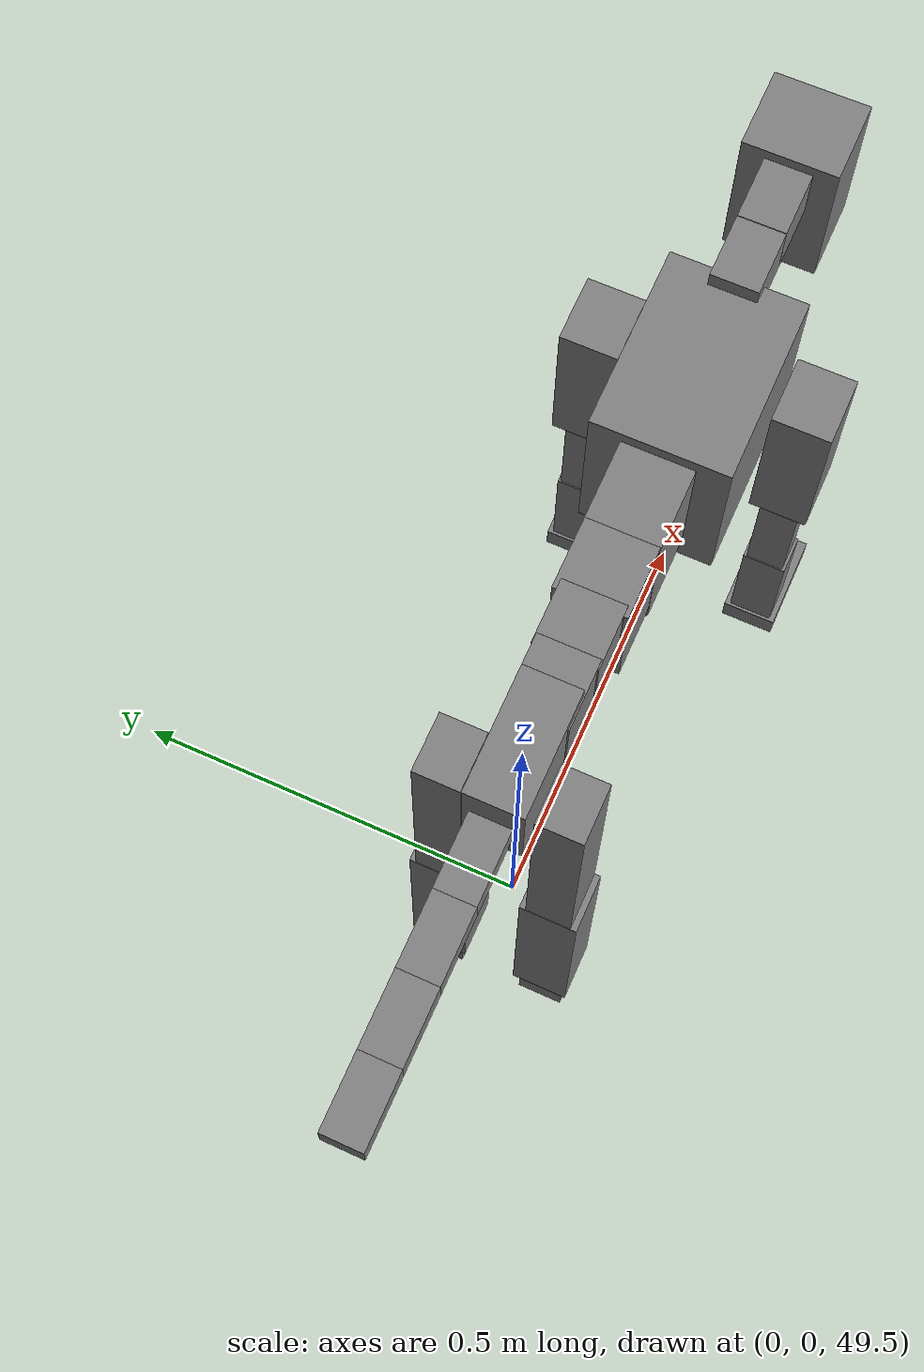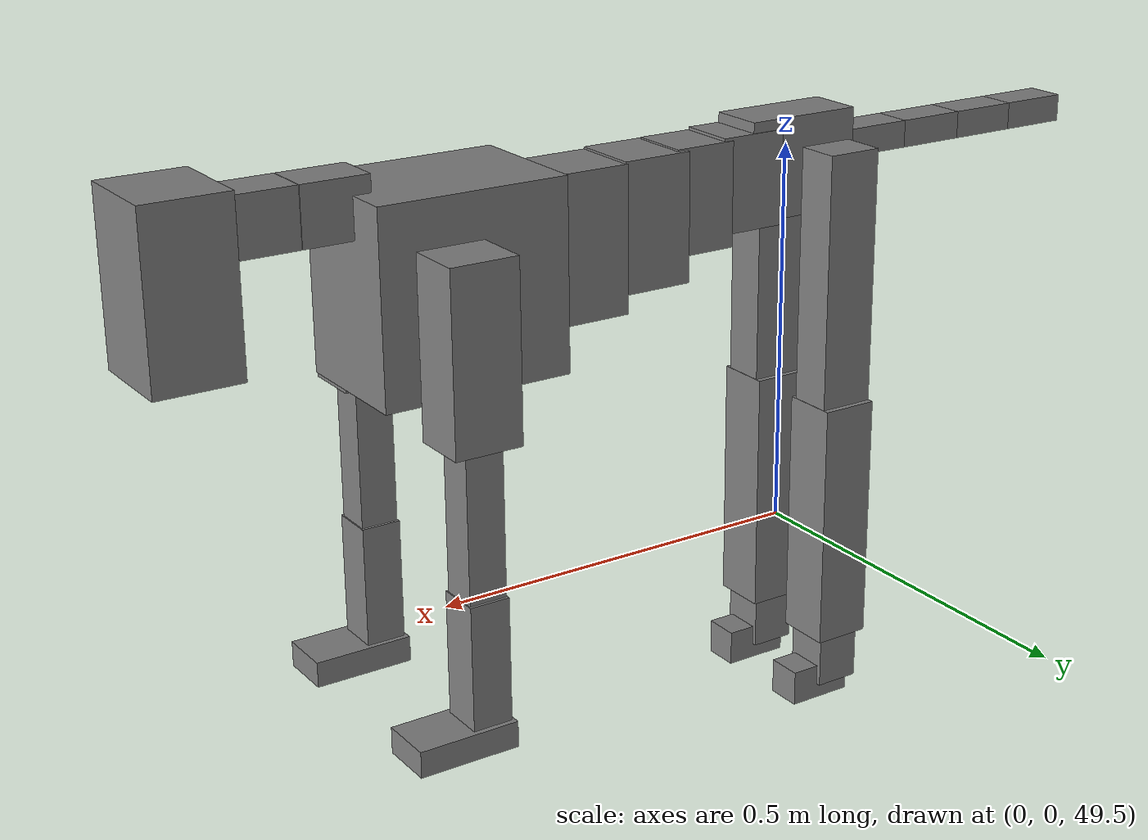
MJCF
<mujoco model="dog">

    <default>
        <joint armature="0.02" stiffness="1" damping="0.2" limited="true"/>
        <geom condim="3" friction="1 0.05 0.05" margin="0.01"/>
        <motor ctrllimited="true" ctrlrange="-1.0 1.0" forcelimited="true" gear="50"/>
    </default>

    <compiler inertiafromgeom="true" angle="radian"/>

    <option timestep="0.016" iterations="50" tolerance="1e-10" solver="Newton" jacobian="dense" cone="pyramidal"/>

    <size nconmax="20000" njmax="60000" nstack="5000000"/>
    <visual>
        <map force="0.1" zfar="30"/>
        <rgba haze="0.15 0.25 0.35 1"/>
        <quality shadowsize="2048"/>
        <global offwidth="800" offheight="800"/>
    </visual>

    <asset>
        <texture type="skybox" builtin="gradient" rgb1="0.3 0.5 0.7" rgb2="0 0 0" width="512" height="512"/>
        <texture name="texplane" type="2d" builtin="checker" rgb1=".2 .3 .4" rgb2=".1 0.15 0.2" width="512" height="512"
                 mark="cross" markrgb=".8 .8 .8"/>
        <texture name="texgeom" type="cube" builtin="flat" mark="cross" width="127" height="1278" rgb1="0.8 0.6 0.4"
                 rgb2="0.8 0.6 0.4" markrgb="1 1 1" random="0.01"/>

        <material name="matplane" reflectance="0.3" texture="texplane" texrepeat="1 1" texuniform="true"/>
        <material name="matgeom" texture="texgeom" texuniform="true" rgba="0.8 0.6 .4 1"/>
    </asset>

    <worldbody>
        <geom name="floor" pos="0 0 0" size="0 0 .25" type="plane" material="matplane" condim="3"/>

        <light directional="false" diffuse=".2 .2 .2" specular="0 0 0" pos="0 0 5" dir="0 0 -1" castshadow="false"/>
        <light mode="targetbodycom" target="torso" directional="false" diffuse=".8 .8 .8" specular="0.3 0.3 0.3"
               pos="0 0 4.0" dir="0 0 -1"/>

        <body name="root" pos="0 0 50">
            <freejoint name="root_1"/>
            <geom type="box" pos="0 0 -0.02" size="0.0774  0.0358  0.063" density="2030"/>

            <body name="spine1" pos="0.054 0 0">
                <joint name="spine1_y" axis="0 1 0" range="0 0.7" limited="true"/>
                <geom type="box" pos="0.02375 0 -0.03" size="0.04375  0.0375  0.05985" density="2030"/>

                <body name="spine2" pos="0.0612 0 0">
                    <joint name="spine2_y" axis="0 1 0" range="-0.15 0.15" limited="true"/>
                    <geom type="box" pos="0.03555  0  -0.04" size="0.04055  0.039  0.06615" density="2030"/>

                    <body name="spine3" pos="0.0730 0 0">
                        <joint name="spine3_y" axis="0 1 0" range="-0.15 0.15" limited="true"/>
                        <geom type="box" pos="0.03555  0  -0.057" size="0.04555  0.0445  0.081" density="2030"/>

                        <body name="spine4" pos="0.0780 0 0">
                            <joint name="spine4_y" axis="0 1 0" range="-0.15 0.15" limited="true"/>
                            <geom type="box" pos="0.05265  0  -0.07" size="0.05265  0.045  0.09135" density="2030"/>

                            <body name="torso" pos="0.1082 0 0">
                                <joint name="torso_y" axis="0 1 0" range="-0.15 0.15" limited="true"/>
                                <geom type="box" pos="0.11925  0  -0.085" size="0.11925  0.085  0.11745"
                                      density="2030"/>

                                <body name="neck1" pos="0.2160  0   0.0180">
                                    <joint name="neck1_y" axis="0 1 0" range="-1.2  -1" limited="true"/>
                                    <geom type="box" pos="0.0423  0  0" size="0.0423  0.03  0.036" density="2325"/>

                                    <body name="neck2" pos="0.0853  0  0">
                                        <joint name="neck2_y" axis="0 1 0" range="0.1  0" limited="true"/>
                                        <geom type="box" pos="0.0423  0  0" size="0.0423  0.03  0.036" density="2325"/>

                                        <body name="head" pos="0.0853  0  0">
                                            <joint name="head_y" axis="0 1 0" range="-0.3  -0.2" limited="true"/>
                                            <geom type="box" pos="0.0531  0  -0.055" size="0.0531  0.06  0.1044"
                                                  density="4030"/>

                                        </body>
                                    </body>
                                </body>

                                <body name="front_shoulder" pos="0.156  0   -0.0480">
                                    <joint name="front_shoulder_y" axis="0 1 0" range="-1 1.5" limited="true"/>
                                    <geom type="box" pos="0 0.13 -0.0827" size="0.0426  0.0364  0.1094" density="1158"/>
                                    <geom type="box" pos="0 -0.13 -0.0827" size="0.0426  0.0364  0.1094"
                                          density="1158"/>

                                    <body name="front_elbow" pos="0  0  -0.1655">
                                        <joint name="front_elbow_y" axis="0 1 0" range="-2 0" limited="true"/>
                                        <geom type="box" pos="0 0.13 -0.1111" size="0.0238  0.0243  0.1111"
                                              density="1081"/>
                                        <geom type="box" pos="0 -0.13 -0.1111" size="0.0238  0.0243  0.1111"
                                              density="1081"/>

                                        <body name="front_wrist" pos="0  0  -0.2222">
                                            <joint name="front_wrist_y" axis="0 1 0" range="-0.2 0" limited="true"/>
                                            <geom type="box" pos="0 0.13 -0.0789" size="0.0252  0.0280  0.0920"
                                                  density="1664"/>
                                            <geom type="box" pos="0 -0.13 -0.0789" size="0.0252  0.0280  0.0920"
                                                  density="1664"/>

                                            <body name="front_finger_end" pos="0  0  -0.1578">
                                                <joint name="front_finger_y" axis="0 1 0" range="-0.4 1"
                                                       limited="true"/>
                                                <geom type="box" pos="0.0348  0.13  -0.0015"
                                                      size="0.0638  0.0348  0.0165" density="1515"/>
                                                <geom type="box" pos="0.0348  -0.13  -0.0015"
                                                      size="0.0638  0.0348  0.0165" density="1515"/>

                                            </body>

                                        </body>
                                    </body>
                                </body>

                            </body>
                        </body>
                    </body>
                </body>
            </body>

            <body name="back_hip" pos="-0.03 0 -0.018">
                <joint name="back_hip_y" axis="0 1 0" range="-1.5 0.3" limited="true"/>
                <geom type="box" pos="0 0.07 -0.1603" size="0.0361  0.0283  0.1831" density="1154"/>
                <geom type="box" pos="0 -0.07 -0.1603" size="0.0361  0.0283  0.1831" density="1154"/>

                <body name="back_knee" pos="0  0  -0.3205">
                    <joint name="back_knee_y" axis="0 1 0" range="0 2.8" limited="true"/>
                    <geom type="box" pos="0 0.07 -0.1455" size="0.0366  0.0361  0.1610" density="1227"/>
                    <geom type="box" pos="0 -0.07 -0.1455" size="0.0366  0.0361  0.1610" density="1227"/>

                    <body name="back_ankle" pos="0  0  -0.2910">
                        <joint name="back_ankle_y" axis="0 1 0" range="-2.2 0" limited="true"/>
                        <geom type="box" pos="0 0.07 -0.0358" size="0.0291  0.0291  0.0471" density="1284"/>
                        <geom type="box" pos="0 -0.07 -0.0358" size="0.0291  0.0291  0.0471" density="1284"/>

                        <body name="back_toe_end" pos="0  0  -0.0717">
                            <joint name="back_toe_y" axis="0 1 0" range="-0.4 1" limited="true"/>
                            <geom type="box" pos="0.0233  0.07  -0.0080" size="0.0427  0.0233  0.0230" density="1515"/>
                            <geom type="box" pos="0.0233  -0.07  -0.0080" size="0.0427  0.0233  0.0230" density="1515"/>

                        </body>
                    </body>
                </body>
            </body>

            <body name="tail1" pos="-0.074 0 -0.006">
                <joint name="tail1_y" axis="0 1 0" range="-0.2 0.2" limited="true"/>
                <geom type="box" pos="-0.0536  0  0" size="0.045  0.025  0.0175" density="1587"/>

                <body name="tail2" pos="-0.09 0 0">
                    <joint name="tail2_y" axis="0 1 0" range="-0.2 0.2" limited="true"/>
                    <geom type="box" pos="-0.0536  0  0" size="0.045  0.025  0.0175" density="1587"/>

                    <body name="tail3" pos="-0.09 0 0">
                        <joint name="tail3_y" axis="0 1 0" range="-0.2 0.2" limited="true"/>
                        <geom type="box" pos="-0.0536  0  0" size="0.045  0.025  0.0175" density="1587"/>

                        <body name="tail4" pos="-0.09 0 0">
                            <joint name="tail4_y" axis="0 1 0" range="-0.2 0.2" limited="true"/>
                            <geom type="box" pos="-0.0536  0  0" size="0.045  0.025  0.0175" density="1587"/>

                        </body>
                    </body>
                </body>
            </body>
        </body>
    </worldbody>

    <actuator>
        <motor joint="spine1_y" forcerange="-150 150     "/>
        <motor joint="spine2_y" forcerange="-150 150     "/>
        <motor joint="spine3_y" forcerange="-150 150     "/>
        <motor joint="spine4_y" forcerange="-150 150     "/>
        <motor joint="torso_y" forcerange="-150 150     "/>
        <motor joint="neck1_y" forcerange="-100 100       "/>
        <motor joint="neck2_y" forcerange="-100 100       "/>
        <motor joint="head_y" forcerange="-150 150       "/>
        <motor joint="front_shoulder_y" forcerange="-187.95 154.72"/>
        <motor joint="front_elbow_y" forcerange="-103.52 173.39"/>
        <motor joint="front_wrist_y" forcerange="-119.16 105.13"/>
        <motor joint="front_finger_y" forcerange="-75.60 70.01"/>
        <motor joint="back_hip_y" forcerange="-244.77 332.74"/>
        <motor joint="back_knee_y" forcerange="-326.06 399.39"/>
        <motor joint="back_angle_y" forcerange="-170.95 194.32"/>
        <motor joint="back_toe_y" forcerange="-21.95 84.35"/>
        <motor joint="tail1_y" forcerange="-50 50     "/>
        <motor joint="tail2_y" forcerange="-50 50     "/>
        <motor joint="tail3_y" forcerange="-50 50     "/>
        <motor joint="tail4_y" forcerange="-50 50     "/>
    </actuator>
</mujoco>
